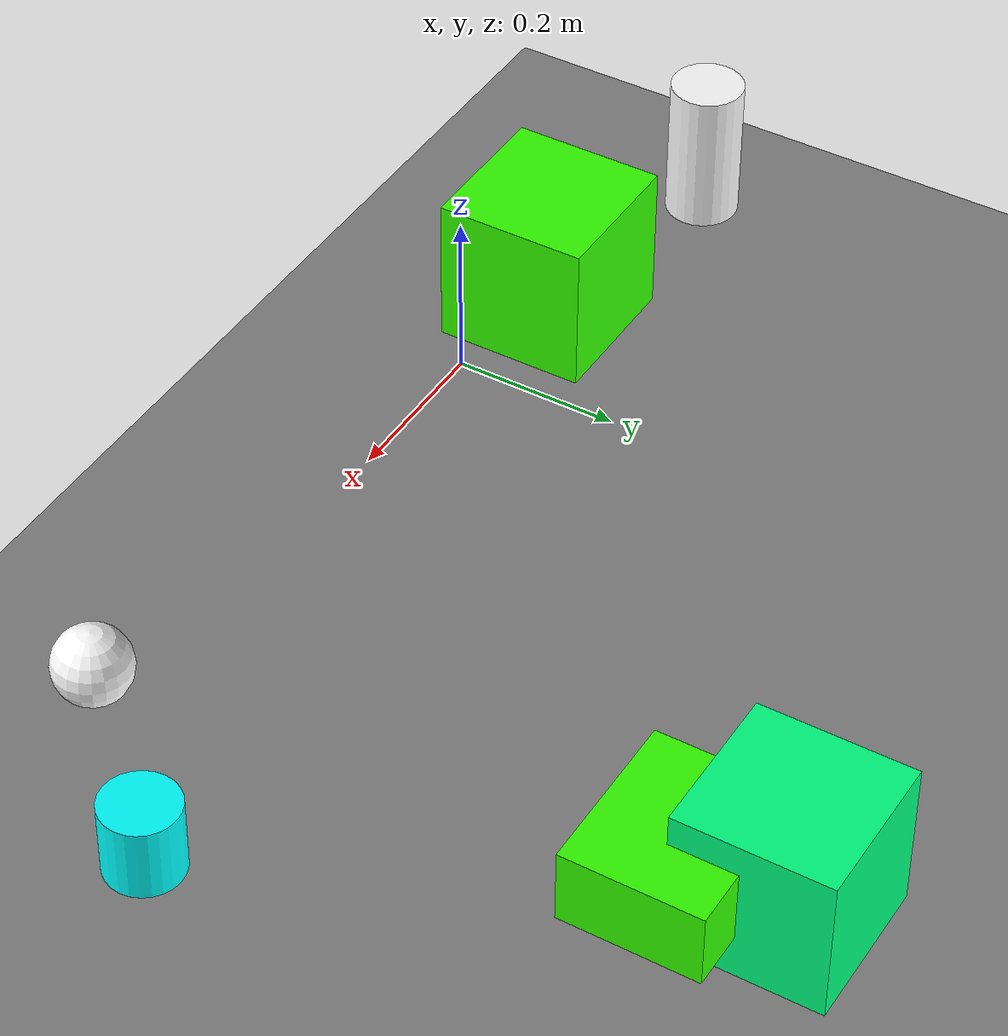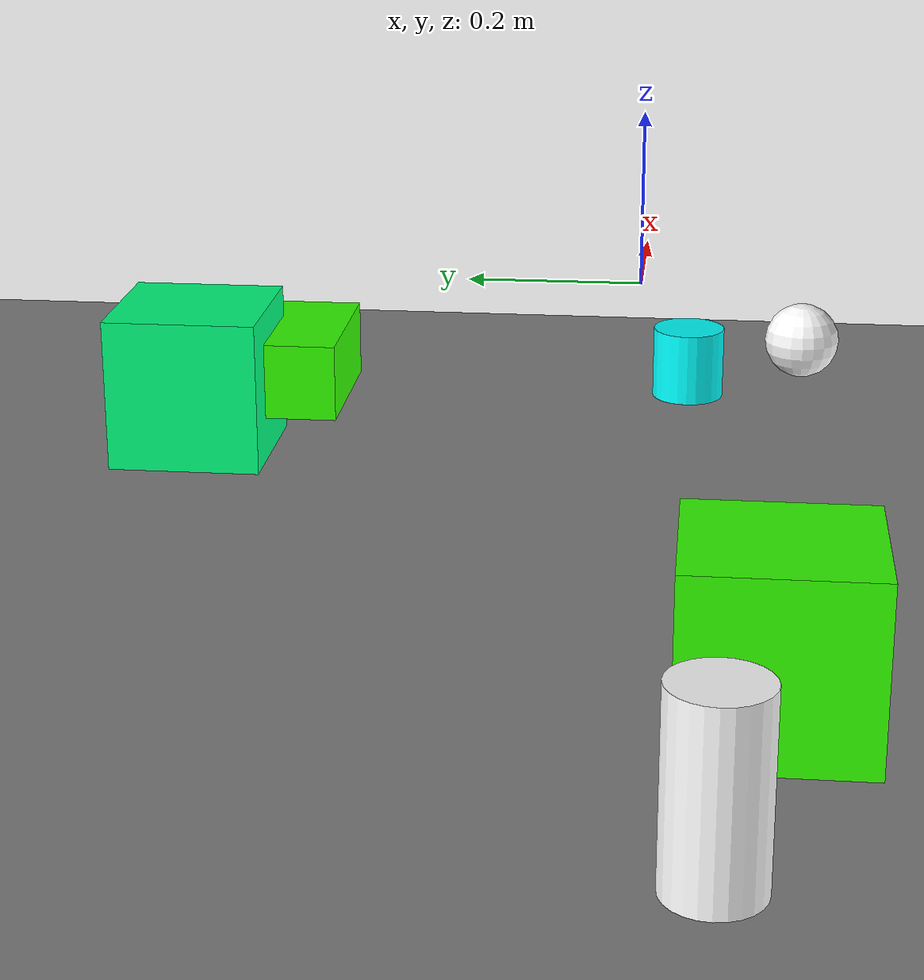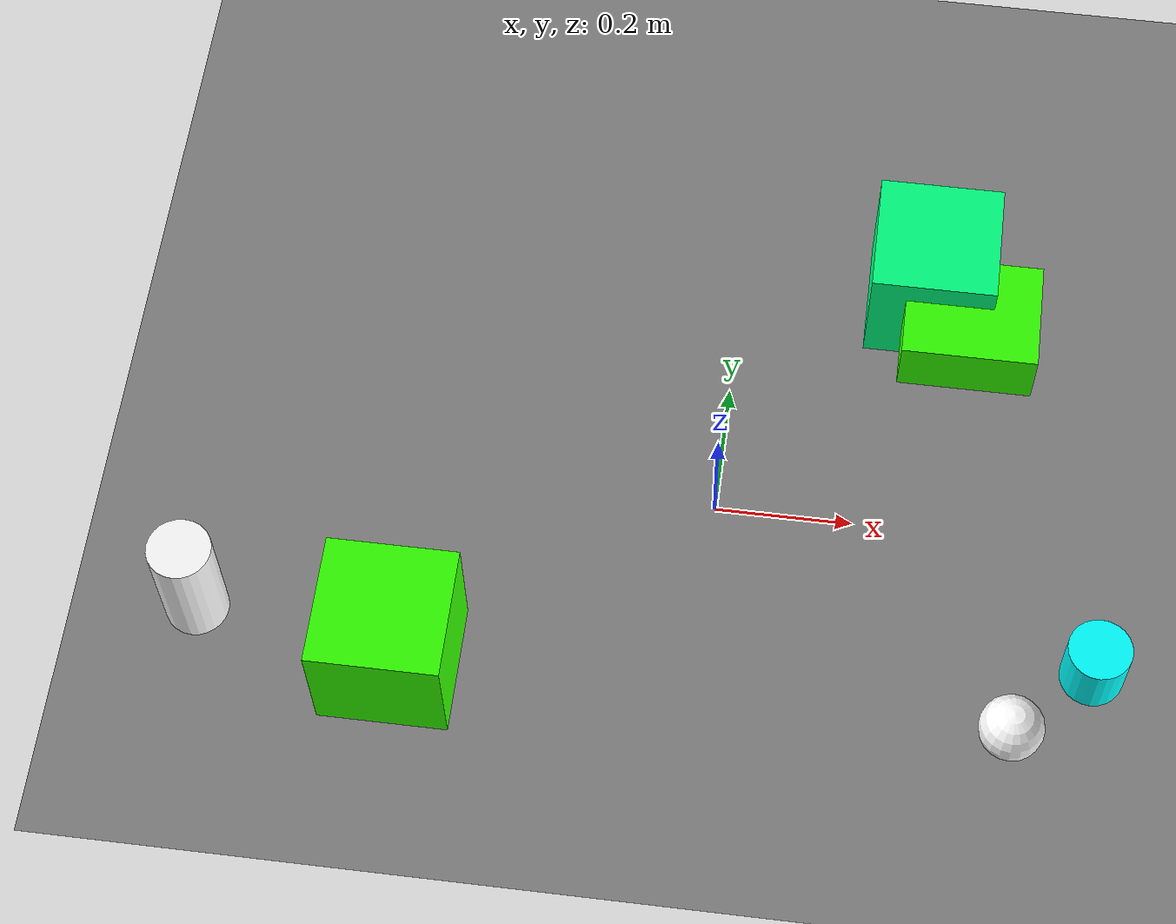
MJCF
<mujoco model='clevr'>
  <compiler inertiafromgeom='true' angle='radian' coordinate='local'/>
  <option timestep='0.01' gravity='0 0 -9.8' iterations='20' integrator='Euler' />

  <default>
    <joint armature='0.04' damping='1' limited='true'/>
    <geom friction='.8 .1 .1' density='300' margin='0.002' condim='1' contype='1' conaffinity='0'/>
  </default>

  <worldbody>
    <light diffuse='.5 .5 .5' pos='0 0 3' dir='0 0 -1'/>
    <geom name='table' type='plane' pos='0 0.5 -0.325' size='1 1 0.1' contype='1' conaffinity='1'/>

    <body name='object1' pos='-0.80 -0.1 -0.225' >
      <geom rgba='1 1 1 1' type='cylinder' size='0.05 0.1 0.1' density='0.00001' contype='1' conaffinity='0'/>
      <joint name='obj1_slidey' type='slide' pos='0 0 0' axis='0 1 0' range='-10.3213 10.3' damping='0.5'/>
      <joint name='obj1_slidex' type='slide' pos='0 0 0' axis='1 0 0' range='-10.3213 10.3' damping='0.5'/>
    </body>

    <body name='object2' pos='0.60 -0.05 -0.275' >
      <geom rgba='0 1 1 1' type='cylinder' size='0.05 0.05 0.05' density='0.00001' contype='1' conaffinity='0'/>
      <joint name='obj2_slidey' type='slide' pos='0 0 0' axis='0 1 0' range='-10.3213 10.3' damping='0.5'/>
      <joint name='obj2_slidex' type='slide' pos='0 0 0' axis='1 0 0' range='-10.3213 10.3' damping='0.5'/>
    </body>

    <body name='object3' pos='0.30 0.60 -0.225' >
      <geom rgba='0 1 0.5 1' type='box' size='0.1 0.1 0.1' density='0.00001' contype='1' conaffinity='0'/>
      <joint name='obj3_slidey' type='slide' pos='0 0 0' axis='0 1 0' range='-10.3213 10.3' damping='0.5'/>
      <joint name='obj3_slidex' type='slide' pos='0 0 0' axis='1 0 0' range='-10.3213 10.3' damping='0.5'/>
    </body>

    <body pos='-0.4793 -0.1582 -0.2228' name='obj4'>
      <geom size='0.1021 0.1021 0.1021' conaffinity='1' contype='1' density='1' rgba='0.2 1 0 1' type='box'/>
      <joint pos='0 0 0' damping='0.75' type='free' limited='false' name='obj3_slide'/>
    </body>

    <body pos='0.3660 0.4967 -0.2166' name='obj0'>
      <geom size='0.1083 0.0902 0.05' conaffinity='1' contype='1' density='1' rgba='0.2 1 0 1' type='box'/>
      <joint pos='0 0 0' damping='0.75' type='free' limited='false' name='obj4_slide'/>
    </body>

    <body pos='0.469675315258 -0.205294383583 -0.2' name='point_mass'>
      <geom type='sphere' contype='1' conaffinity='0' rgba='1 1 1 1' density='0.5' size='0.05' name='pm'/>
      <joint type='slide' axis='1 0 0' damping='0.5' pos='0 0 0' name='pm_joint_x' range='-10.3213 10.3'/>
      <joint type='slide' axis='0 1 0' damping='0.5' pos='0 0 0' name='pm_joint_y' range='-10.3213 10.3'/>
    </body>

  </worldbody>

  <actuator>
    <motor joint='pm_joint_x' ctrllimited='true' ctrlrange='-2.0 2.0'/>
    <motor joint='pm_joint_y' ctrllimited='true' ctrlrange='-2.0 2.0'/>
  </actuator>

</mujoco>
